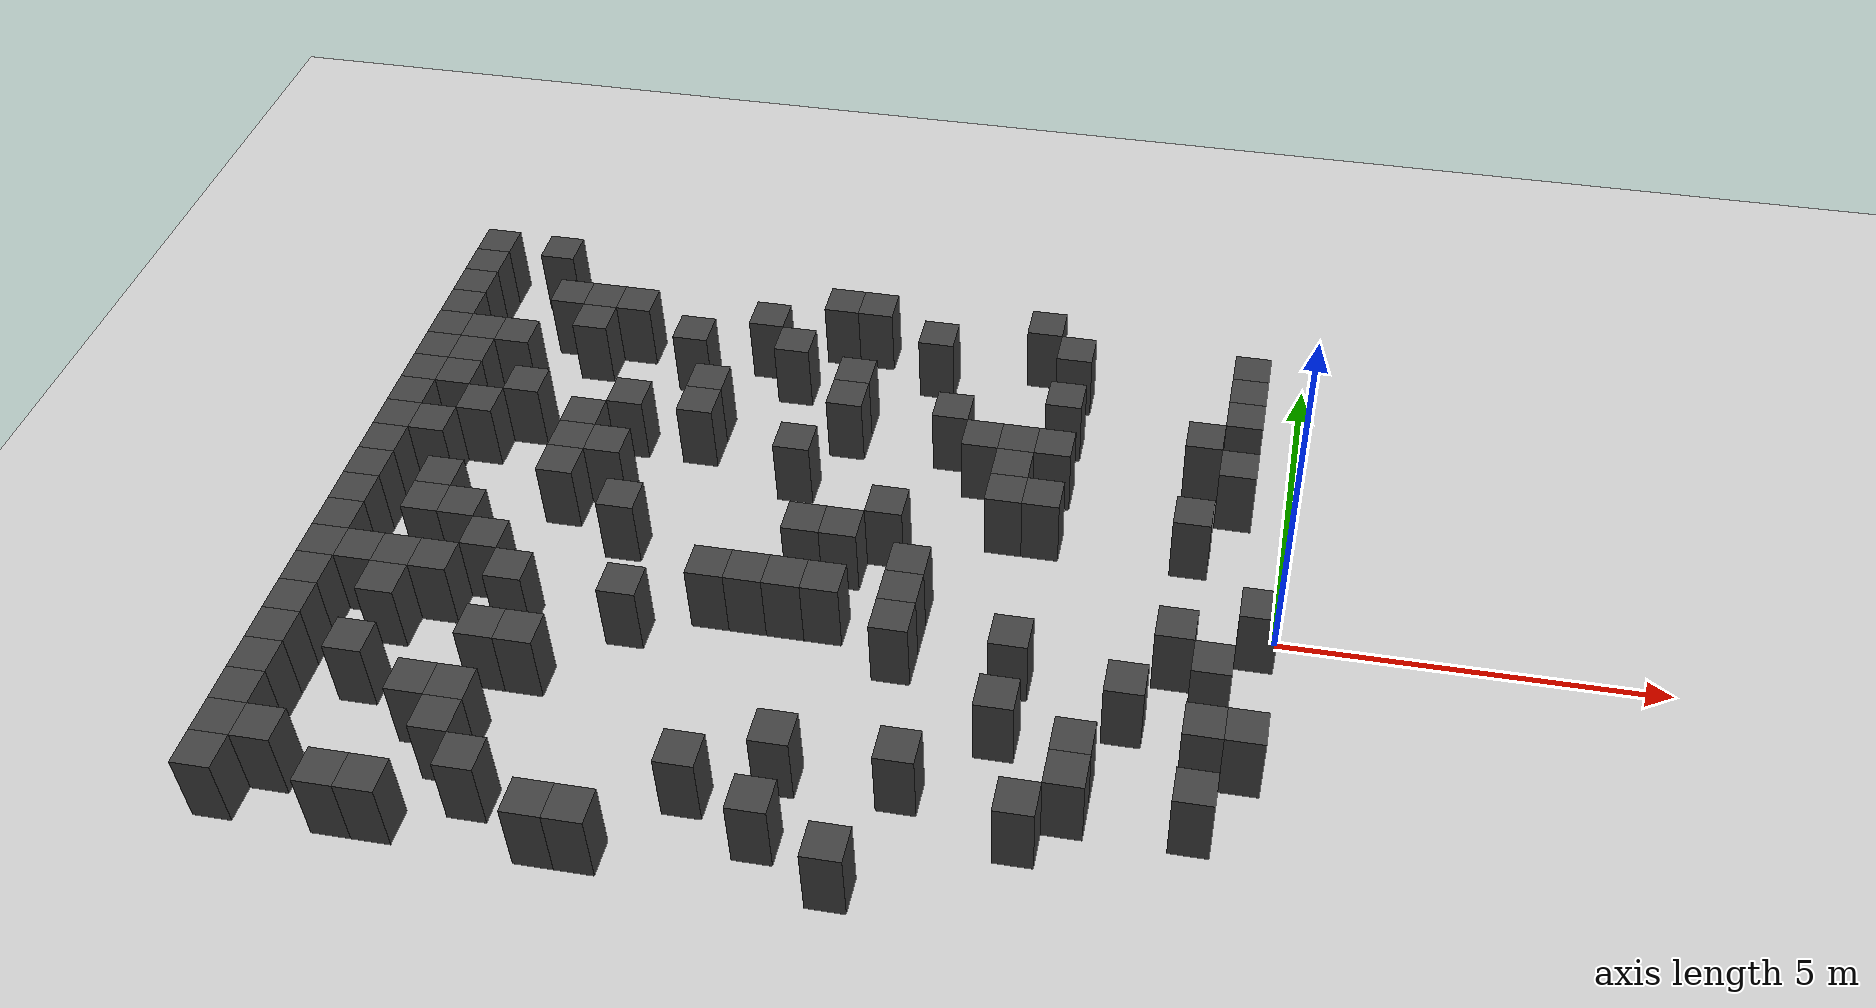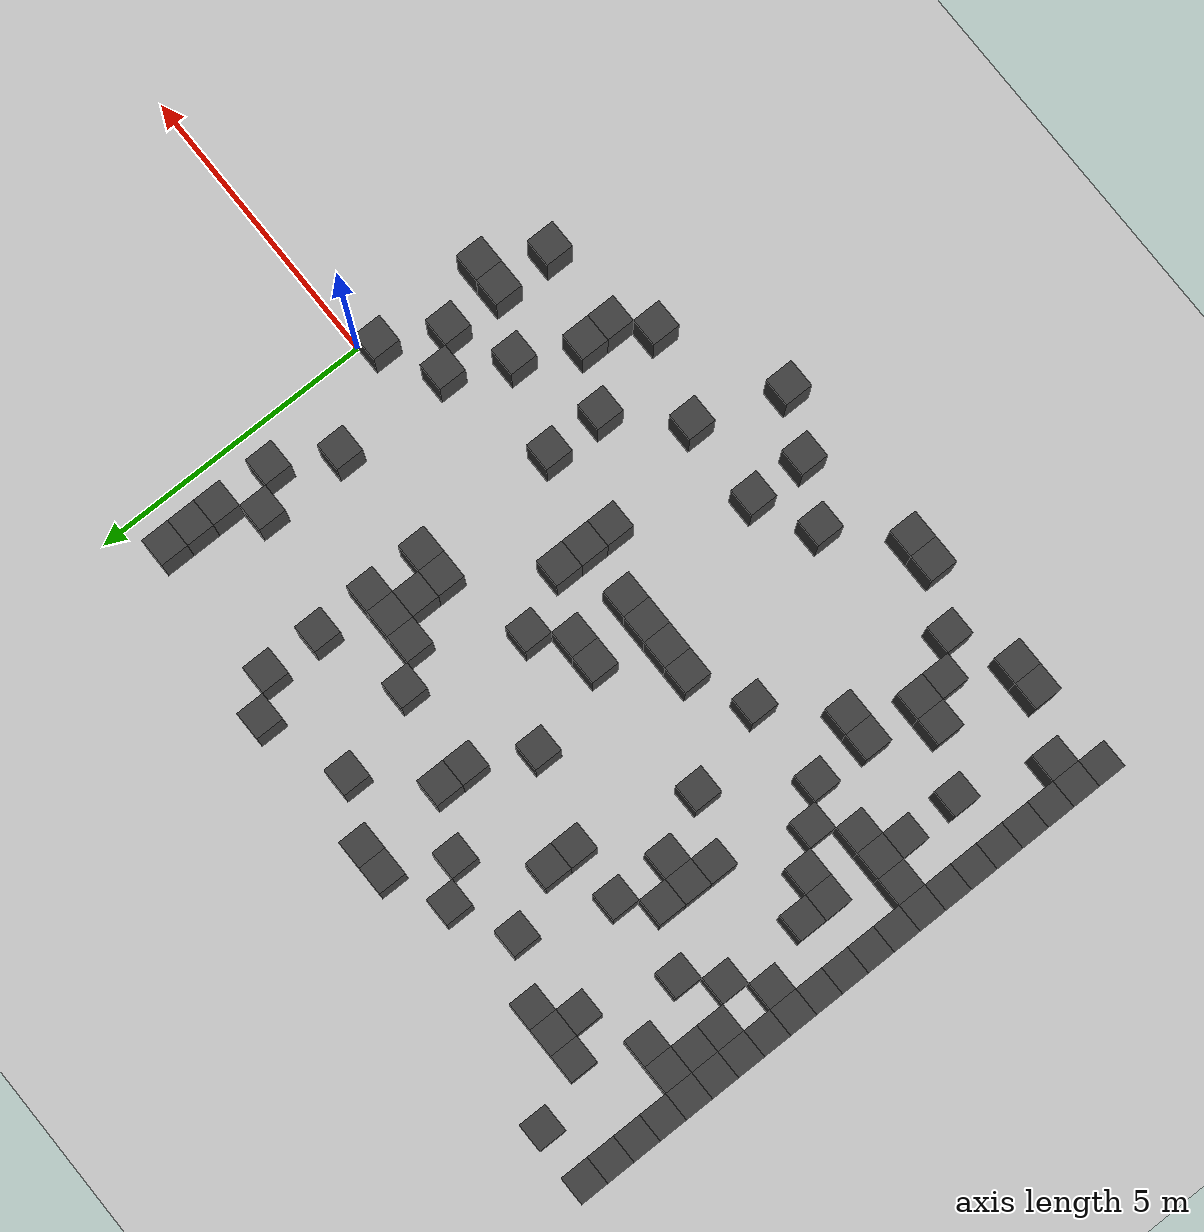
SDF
<sdf version="1.7">
 <world name="map_4492">
  <model name="ground_plane">
   <static>true</static>
   <link name="link">
    <collision name="collision">
     <geometry><plane><normal>0 0 1</normal><size>200 200</size></plane></geometry>
    </collision>
    <visual name="visual">
     <geometry><plane><normal>0 0 1</normal><size>200 200</size></plane></geometry>
     <material><ambient>0.8 0.8 0.8 1</ambient><diffuse>0.8 0.8 0.8 1</diffuse></material>
    </visual>
   </link>
  </model>
  <model name="maze_environment">
   <static>true</static>
   <link name="wall_214">
    <pose>-12.250 5.250 0.500 0 0 0</pose>
    <collision name="col"><geometry><box><size>0.5 0.5 1.0</size></box></geometry></collision>
    <visual name="vis">
     <geometry><box><size>0.5 0.5 1.0</size></box></geometry>
     <material><ambient>0.15 0.15 0.15 1</ambient><diffuse>0.25 0.25 0.25 1</diffuse></material>
    </visual>
   </link>
   <link name="wall_215">
    <pose>-11.250 5.250 0.500 0 0 0</pose>
    <collision name="col"><geometry><box><size>0.5 0.5 1.0</size></box></geometry></collision>
    <visual name="vis">
     <geometry><box><size>0.5 0.5 1.0</size></box></geometry>
     <material><ambient>0.15 0.15 0.15 1</ambient><diffuse>0.25 0.25 0.25 1</diffuse></material>
    </visual>
   </link>
   <link name="wall_226">
    <pose>-12.250 4.750 0.500 0 0 0</pose>
    <collision name="col"><geometry><box><size>0.5 0.5 1.0</size></box></geometry></collision>
    <visual name="vis">
     <geometry><box><size>0.5 0.5 1.0</size></box></geometry>
     <material><ambient>0.15 0.15 0.15 1</ambient><diffuse>0.25 0.25 0.25 1</diffuse></material>
    </visual>
   </link>
   <link name="wall_227">
    <pose>-6.750 4.750 0.500 0 0 0</pose>
    <collision name="col"><geometry><box><size>0.5 0.5 1.0</size></box></geometry></collision>
    <visual name="vis">
     <geometry><box><size>0.5 0.5 1.0</size></box></geometry>
     <material><ambient>0.15 0.15 0.15 1</ambient><diffuse>0.25 0.25 0.25 1</diffuse></material>
    </visual>
   </link>
   <link name="wall_228">
    <pose>-6.250 4.750 0.500 0 0 0</pose>
    <collision name="col"><geometry><box><size>0.5 0.5 1.0</size></box></geometry></collision>
    <visual name="vis">
     <geometry><box><size>0.5 0.5 1.0</size></box></geometry>
     <material><ambient>0.15 0.15 0.15 1</ambient><diffuse>0.25 0.25 0.25 1</diffuse></material>
    </visual>
   </link>
   <link name="wall_229">
    <pose>-3.750 4.750 0.500 0 0 0</pose>
    <collision name="col"><geometry><box><size>0.5 0.5 1.0</size></box></geometry></collision>
    <visual name="vis">
     <geometry><box><size>0.5 0.5 1.0</size></box></geometry>
     <material><ambient>0.15 0.15 0.15 1</ambient><diffuse>0.25 0.25 0.25 1</diffuse></material>
    </visual>
   </link>
   <link name="wall_235">
    <pose>-12.250 4.250 0.500 0 0 0</pose>
    <collision name="col"><geometry><box><size>0.5 0.5 1.0</size></box></geometry></collision>
    <visual name="vis">
     <geometry><box><size>0.5 0.5 1.0</size></box></geometry>
     <material><ambient>0.15 0.15 0.15 1</ambient><diffuse>0.25 0.25 0.25 1</diffuse></material>
    </visual>
   </link>
   <link name="wall_236">
    <pose>-10.750 4.250 0.500 0 0 0</pose>
    <collision name="col"><geometry><box><size>0.5 0.5 1.0</size></box></geometry></collision>
    <visual name="vis">
     <geometry><box><size>0.5 0.5 1.0</size></box></geometry>
     <material><ambient>0.15 0.15 0.15 1</ambient><diffuse>0.25 0.25 0.25 1</diffuse></material>
    </visual>
   </link>
   <link name="wall_237">
    <pose>-10.250 4.250 0.500 0 0 0</pose>
    <collision name="col"><geometry><box><size>0.5 0.5 1.0</size></box></geometry></collision>
    <visual name="vis">
     <geometry><box><size>0.5 0.5 1.0</size></box></geometry>
     <material><ambient>0.15 0.15 0.15 1</ambient><diffuse>0.25 0.25 0.25 1</diffuse></material>
    </visual>
   </link>
   <link name="wall_238">
    <pose>-9.750 4.250 0.500 0 0 0</pose>
    <collision name="col"><geometry><box><size>0.5 0.5 1.0</size></box></geometry></collision>
    <visual name="vis">
     <geometry><box><size>0.5 0.5 1.0</size></box></geometry>
     <material><ambient>0.15 0.15 0.15 1</ambient><diffuse>0.25 0.25 0.25 1</diffuse></material>
    </visual>
   </link>
   <link name="wall_239">
    <pose>-7.750 4.250 0.500 0 0 0</pose>
    <collision name="col"><geometry><box><size>0.5 0.5 1.0</size></box></geometry></collision>
    <visual name="vis">
     <geometry><box><size>0.5 0.5 1.0</size></box></geometry>
     <material><ambient>0.15 0.15 0.15 1</ambient><diffuse>0.25 0.25 0.25 1</diffuse></material>
    </visual>
   </link>
   <link name="wall_240">
    <pose>-5.250 4.250 0.500 0 0 0</pose>
    <collision name="col"><geometry><box><size>0.5 0.5 1.0</size></box></geometry></collision>
    <visual name="vis">
     <geometry><box><size>0.5 0.5 1.0</size></box></geometry>
     <material><ambient>0.15 0.15 0.15 1</ambient><diffuse>0.25 0.25 0.25 1</diffuse></material>
    </visual>
   </link>
   <link name="wall_241">
    <pose>-3.250 4.250 0.500 0 0 0</pose>
    <collision name="col"><geometry><box><size>0.5 0.5 1.0</size></box></geometry></collision>
    <visual name="vis">
     <geometry><box><size>0.5 0.5 1.0</size></box></geometry>
     <material><ambient>0.15 0.15 0.15 1</ambient><diffuse>0.25 0.25 0.25 1</diffuse></material>
    </visual>
   </link>
   <link name="wall_242">
    <pose>-0.750 4.250 0.500 0 0 0</pose>
    <collision name="col"><geometry><box><size>0.5 0.5 1.0</size></box></geometry></collision>
    <visual name="vis">
     <geometry><box><size>0.5 0.5 1.0</size></box></geometry>
     <material><ambient>0.15 0.15 0.15 1</ambient><diffuse>0.25 0.25 0.25 1</diffuse></material>
    </visual>
   </link>
   <link name="wall_249">
    <pose>-12.250 3.750 0.500 0 0 0</pose>
    <collision name="col"><geometry><box><size>0.5 0.5 1.0</size></box></geometry></collision>
    <visual name="vis">
     <geometry><box><size>0.5 0.5 1.0</size></box></geometry>
     <material><ambient>0.15 0.15 0.15 1</ambient><diffuse>0.25 0.25 0.25 1</diffuse></material>
    </visual>
   </link>
   <link name="wall_250">
    <pose>-10.250 3.750 0.500 0 0 0</pose>
    <collision name="col"><geometry><box><size>0.5 0.5 1.0</size></box></geometry></collision>
    <visual name="vis">
     <geometry><box><size>0.5 0.5 1.0</size></box></geometry>
     <material><ambient>0.15 0.15 0.15 1</ambient><diffuse>0.25 0.25 0.25 1</diffuse></material>
    </visual>
   </link>
   <link name="wall_251">
    <pose>-8.750 3.750 0.500 0 0 0</pose>
    <collision name="col"><geometry><box><size>0.5 0.5 1.0</size></box></geometry></collision>
    <visual name="vis">
     <geometry><box><size>0.5 0.5 1.0</size></box></geometry>
     <material><ambient>0.15 0.15 0.15 1</ambient><diffuse>0.25 0.25 0.25 1</diffuse></material>
    </visual>
   </link>
   <link name="wall_252">
    <pose>-7.250 3.750 0.500 0 0 0</pose>
    <collision name="col"><geometry><box><size>0.5 0.5 1.0</size></box></geometry></collision>
    <visual name="vis">
     <geometry><box><size>0.5 0.5 1.0</size></box></geometry>
     <material><ambient>0.15 0.15 0.15 1</ambient><diffuse>0.25 0.25 0.25 1</diffuse></material>
    </visual>
   </link>
   <link name="wall_253">
    <pose>-0.750 3.750 0.500 0 0 0</pose>
    <collision name="col"><geometry><box><size>0.5 0.5 1.0</size></box></geometry></collision>
    <visual name="vis">
     <geometry><box><size>0.5 0.5 1.0</size></box></geometry>
     <material><ambient>0.15 0.15 0.15 1</ambient><diffuse>0.25 0.25 0.25 1</diffuse></material>
    </visual>
   </link>
   <link name="wall_259">
    <pose>-12.250 3.250 0.500 0 0 0</pose>
    <collision name="col"><geometry><box><size>0.5 0.5 1.0</size></box></geometry></collision>
    <visual name="vis">
     <geometry><box><size>0.5 0.5 1.0</size></box></geometry>
     <material><ambient>0.15 0.15 0.15 1</ambient><diffuse>0.25 0.25 0.25 1</diffuse></material>
    </visual>
   </link>
   <link name="wall_260">
    <pose>-11.750 3.250 0.500 0 0 0</pose>
    <collision name="col"><geometry><box><size>0.5 0.5 1.0</size></box></geometry></collision>
    <visual name="vis">
     <geometry><box><size>0.5 0.5 1.0</size></box></geometry>
     <material><ambient>0.15 0.15 0.15 1</ambient><diffuse>0.25 0.25 0.25 1</diffuse></material>
    </visual>
   </link>
   <link name="wall_261">
    <pose>-11.250 3.250 0.500 0 0 0</pose>
    <collision name="col"><geometry><box><size>0.5 0.5 1.0</size></box></geometry></collision>
    <visual name="vis">
     <geometry><box><size>0.5 0.5 1.0</size></box></geometry>
     <material><ambient>0.15 0.15 0.15 1</ambient><diffuse>0.25 0.25 0.25 1</diffuse></material>
    </visual>
   </link>
   <link name="wall_262">
    <pose>-6.250 3.250 0.500 0 0 0</pose>
    <collision name="col"><geometry><box><size>0.5 0.5 1.0</size></box></geometry></collision>
    <visual name="vis">
     <geometry><box><size>0.5 0.5 1.0</size></box></geometry>
     <material><ambient>0.15 0.15 0.15 1</ambient><diffuse>0.25 0.25 0.25 1</diffuse></material>
    </visual>
   </link>
   <link name="wall_263">
    <pose>-3.250 3.250 0.500 0 0 0</pose>
    <collision name="col"><geometry><box><size>0.5 0.5 1.0</size></box></geometry></collision>
    <visual name="vis">
     <geometry><box><size>0.5 0.5 1.0</size></box></geometry>
     <material><ambient>0.15 0.15 0.15 1</ambient><diffuse>0.25 0.25 0.25 1</diffuse></material>
    </visual>
   </link>
   <link name="wall_264">
    <pose>-0.750 3.250 0.500 0 0 0</pose>
    <collision name="col"><geometry><box><size>0.5 0.5 1.0</size></box></geometry></collision>
    <visual name="vis">
     <geometry><box><size>0.5 0.5 1.0</size></box></geometry>
     <material><ambient>0.15 0.15 0.15 1</ambient><diffuse>0.25 0.25 0.25 1</diffuse></material>
    </visual>
   </link>
   <link name="wall_271">
    <pose>-12.250 2.750 0.500 0 0 0</pose>
    <collision name="col"><geometry><box><size>0.5 0.5 1.0</size></box></geometry></collision>
    <visual name="vis">
     <geometry><box><size>0.5 0.5 1.0</size></box></geometry>
     <material><ambient>0.15 0.15 0.15 1</ambient><diffuse>0.25 0.25 0.25 1</diffuse></material>
    </visual>
   </link>
   <link name="wall_272">
    <pose>-11.750 2.750 0.500 0 0 0</pose>
    <collision name="col"><geometry><box><size>0.5 0.5 1.0</size></box></geometry></collision>
    <visual name="vis">
     <geometry><box><size>0.5 0.5 1.0</size></box></geometry>
     <material><ambient>0.15 0.15 0.15 1</ambient><diffuse>0.25 0.25 0.25 1</diffuse></material>
    </visual>
   </link>
   <link name="wall_273">
    <pose>-8.250 2.750 0.500 0 0 0</pose>
    <collision name="col"><geometry><box><size>0.5 0.5 1.0</size></box></geometry></collision>
    <visual name="vis">
     <geometry><box><size>0.5 0.5 1.0</size></box></geometry>
     <material><ambient>0.15 0.15 0.15 1</ambient><diffuse>0.25 0.25 0.25 1</diffuse></material>
    </visual>
   </link>
   <link name="wall_274">
    <pose>-6.250 2.750 0.500 0 0 0</pose>
    <collision name="col"><geometry><box><size>0.5 0.5 1.0</size></box></geometry></collision>
    <visual name="vis">
     <geometry><box><size>0.5 0.5 1.0</size></box></geometry>
     <material><ambient>0.15 0.15 0.15 1</ambient><diffuse>0.25 0.25 0.25 1</diffuse></material>
    </visual>
   </link>
   <link name="wall_275">
    <pose>-4.750 2.750 0.500 0 0 0</pose>
    <collision name="col"><geometry><box><size>0.5 0.5 1.0</size></box></geometry></collision>
    <visual name="vis">
     <geometry><box><size>0.5 0.5 1.0</size></box></geometry>
     <material><ambient>0.15 0.15 0.15 1</ambient><diffuse>0.25 0.25 0.25 1</diffuse></material>
    </visual>
   </link>
   <link name="wall_276">
    <pose>-1.250 2.750 0.500 0 0 0</pose>
    <collision name="col"><geometry><box><size>0.5 0.5 1.0</size></box></geometry></collision>
    <visual name="vis">
     <geometry><box><size>0.5 0.5 1.0</size></box></geometry>
     <material><ambient>0.15 0.15 0.15 1</ambient><diffuse>0.25 0.25 0.25 1</diffuse></material>
    </visual>
   </link>
   <link name="wall_282">
    <pose>-12.250 2.250 0.500 0 0 0</pose>
    <collision name="col"><geometry><box><size>0.5 0.5 1.0</size></box></geometry></collision>
    <visual name="vis">
     <geometry><box><size>0.5 0.5 1.0</size></box></geometry>
     <material><ambient>0.15 0.15 0.15 1</ambient><diffuse>0.25 0.25 0.25 1</diffuse></material>
    </visual>
   </link>
   <link name="wall_283">
    <pose>-11.750 2.250 0.500 0 0 0</pose>
    <collision name="col"><geometry><box><size>0.5 0.5 1.0</size></box></geometry></collision>
    <visual name="vis">
     <geometry><box><size>0.5 0.5 1.0</size></box></geometry>
     <material><ambient>0.15 0.15 0.15 1</ambient><diffuse>0.25 0.25 0.25 1</diffuse></material>
    </visual>
   </link>
   <link name="wall_284">
    <pose>-10.750 2.250 0.500 0 0 0</pose>
    <collision name="col"><geometry><box><size>0.5 0.5 1.0</size></box></geometry></collision>
    <visual name="vis">
     <geometry><box><size>0.5 0.5 1.0</size></box></geometry>
     <material><ambient>0.15 0.15 0.15 1</ambient><diffuse>0.25 0.25 0.25 1</diffuse></material>
    </visual>
   </link>
   <link name="wall_285">
    <pose>-9.250 2.250 0.500 0 0 0</pose>
    <collision name="col"><geometry><box><size>0.5 0.5 1.0</size></box></geometry></collision>
    <visual name="vis">
     <geometry><box><size>0.5 0.5 1.0</size></box></geometry>
     <material><ambient>0.15 0.15 0.15 1</ambient><diffuse>0.25 0.25 0.25 1</diffuse></material>
    </visual>
   </link>
   <link name="wall_286">
    <pose>-8.250 2.250 0.500 0 0 0</pose>
    <collision name="col"><geometry><box><size>0.5 0.5 1.0</size></box></geometry></collision>
    <visual name="vis">
     <geometry><box><size>0.5 0.5 1.0</size></box></geometry>
     <material><ambient>0.15 0.15 0.15 1</ambient><diffuse>0.25 0.25 0.25 1</diffuse></material>
    </visual>
   </link>
   <link name="wall_287">
    <pose>-4.250 2.250 0.500 0 0 0</pose>
    <collision name="col"><geometry><box><size>0.5 0.5 1.0</size></box></geometry></collision>
    <visual name="vis">
     <geometry><box><size>0.5 0.5 1.0</size></box></geometry>
     <material><ambient>0.15 0.15 0.15 1</ambient><diffuse>0.25 0.25 0.25 1</diffuse></material>
    </visual>
   </link>
   <link name="wall_288">
    <pose>-3.750 2.250 0.500 0 0 0</pose>
    <collision name="col"><geometry><box><size>0.5 0.5 1.0</size></box></geometry></collision>
    <visual name="vis">
     <geometry><box><size>0.5 0.5 1.0</size></box></geometry>
     <material><ambient>0.15 0.15 0.15 1</ambient><diffuse>0.25 0.25 0.25 1</diffuse></material>
    </visual>
   </link>
   <link name="wall_289">
    <pose>-3.250 2.250 0.500 0 0 0</pose>
    <collision name="col"><geometry><box><size>0.5 0.5 1.0</size></box></geometry></collision>
    <visual name="vis">
     <geometry><box><size>0.5 0.5 1.0</size></box></geometry>
     <material><ambient>0.15 0.15 0.15 1</ambient><diffuse>0.25 0.25 0.25 1</diffuse></material>
    </visual>
   </link>
   <link name="wall_290">
    <pose>-0.750 2.250 0.500 0 0 0</pose>
    <collision name="col"><geometry><box><size>0.5 0.5 1.0</size></box></geometry></collision>
    <visual name="vis">
     <geometry><box><size>0.5 0.5 1.0</size></box></geometry>
     <material><ambient>0.15 0.15 0.15 1</ambient><diffuse>0.25 0.25 0.25 1</diffuse></material>
    </visual>
   </link>
   <link name="wall_297">
    <pose>-12.250 1.750 0.500 0 0 0</pose>
    <collision name="col"><geometry><box><size>0.5 0.5 1.0</size></box></geometry></collision>
    <visual name="vis">
     <geometry><box><size>0.5 0.5 1.0</size></box></geometry>
     <material><ambient>0.15 0.15 0.15 1</ambient><diffuse>0.25 0.25 0.25 1</diffuse></material>
    </visual>
   </link>
   <link name="wall_298">
    <pose>-11.250 1.750 0.500 0 0 0</pose>
    <collision name="col"><geometry><box><size>0.5 0.5 1.0</size></box></geometry></collision>
    <visual name="vis">
     <geometry><box><size>0.5 0.5 1.0</size></box></geometry>
     <material><ambient>0.15 0.15 0.15 1</ambient><diffuse>0.25 0.25 0.25 1</diffuse></material>
    </visual>
   </link>
   <link name="wall_299">
    <pose>-9.750 1.750 0.500 0 0 0</pose>
    <collision name="col"><geometry><box><size>0.5 0.5 1.0</size></box></geometry></collision>
    <visual name="vis">
     <geometry><box><size>0.5 0.5 1.0</size></box></geometry>
     <material><ambient>0.15 0.15 0.15 1</ambient><diffuse>0.25 0.25 0.25 1</diffuse></material>
    </visual>
   </link>
   <link name="wall_300">
    <pose>-6.750 1.750 0.500 0 0 0</pose>
    <collision name="col"><geometry><box><size>0.5 0.5 1.0</size></box></geometry></collision>
    <visual name="vis">
     <geometry><box><size>0.5 0.5 1.0</size></box></geometry>
     <material><ambient>0.15 0.15 0.15 1</ambient><diffuse>0.25 0.25 0.25 1</diffuse></material>
    </visual>
   </link>
   <link name="wall_301">
    <pose>-3.750 1.750 0.500 0 0 0</pose>
    <collision name="col"><geometry><box><size>0.5 0.5 1.0</size></box></geometry></collision>
    <visual name="vis">
     <geometry><box><size>0.5 0.5 1.0</size></box></geometry>
     <material><ambient>0.15 0.15 0.15 1</ambient><diffuse>0.25 0.25 0.25 1</diffuse></material>
    </visual>
   </link>
   <link name="wall_307">
    <pose>-12.250 1.250 0.500 0 0 0</pose>
    <collision name="col"><geometry><box><size>0.5 0.5 1.0</size></box></geometry></collision>
    <visual name="vis">
     <geometry><box><size>0.5 0.5 1.0</size></box></geometry>
     <material><ambient>0.15 0.15 0.15 1</ambient><diffuse>0.25 0.25 0.25 1</diffuse></material>
    </visual>
   </link>
   <link name="wall_308">
    <pose>-11.750 1.250 0.500 0 0 0</pose>
    <collision name="col"><geometry><box><size>0.5 0.5 1.0</size></box></geometry></collision>
    <visual name="vis">
     <geometry><box><size>0.5 0.5 1.0</size></box></geometry>
     <material><ambient>0.15 0.15 0.15 1</ambient><diffuse>0.25 0.25 0.25 1</diffuse></material>
    </visual>
   </link>
   <link name="wall_309">
    <pose>-9.750 1.250 0.500 0 0 0</pose>
    <collision name="col"><geometry><box><size>0.5 0.5 1.0</size></box></geometry></collision>
    <visual name="vis">
     <geometry><box><size>0.5 0.5 1.0</size></box></geometry>
     <material><ambient>0.15 0.15 0.15 1</ambient><diffuse>0.25 0.25 0.25 1</diffuse></material>
    </visual>
   </link>
   <link name="wall_310">
    <pose>-9.250 1.250 0.500 0 0 0</pose>
    <collision name="col"><geometry><box><size>0.5 0.5 1.0</size></box></geometry></collision>
    <visual name="vis">
     <geometry><box><size>0.5 0.5 1.0</size></box></geometry>
     <material><ambient>0.15 0.15 0.15 1</ambient><diffuse>0.25 0.25 0.25 1</diffuse></material>
    </visual>
   </link>
   <link name="wall_311">
    <pose>-3.750 1.250 0.500 0 0 0</pose>
    <collision name="col"><geometry><box><size>0.5 0.5 1.0</size></box></geometry></collision>
    <visual name="vis">
     <geometry><box><size>0.5 0.5 1.0</size></box></geometry>
     <material><ambient>0.15 0.15 0.15 1</ambient><diffuse>0.25 0.25 0.25 1</diffuse></material>
    </visual>
   </link>
   <link name="wall_312">
    <pose>-3.250 1.250 0.500 0 0 0</pose>
    <collision name="col"><geometry><box><size>0.5 0.5 1.0</size></box></geometry></collision>
    <visual name="vis">
     <geometry><box><size>0.5 0.5 1.0</size></box></geometry>
     <material><ambient>0.15 0.15 0.15 1</ambient><diffuse>0.25 0.25 0.25 1</diffuse></material>
    </visual>
   </link>
   <link name="wall_313">
    <pose>-1.250 1.250 0.500 0 0 0</pose>
    <collision name="col"><geometry><box><size>0.5 0.5 1.0</size></box></geometry></collision>
    <visual name="vis">
     <geometry><box><size>0.5 0.5 1.0</size></box></geometry>
     <material><ambient>0.15 0.15 0.15 1</ambient><diffuse>0.25 0.25 0.25 1</diffuse></material>
    </visual>
   </link>
   <link name="wall_322">
    <pose>-12.250 0.750 0.500 0 0 0</pose>
    <collision name="col"><geometry><box><size>0.5 0.5 1.0</size></box></geometry></collision>
    <visual name="vis">
     <geometry><box><size>0.5 0.5 1.0</size></box></geometry>
     <material><ambient>0.15 0.15 0.15 1</ambient><diffuse>0.25 0.25 0.25 1</diffuse></material>
    </visual>
   </link>
   <link name="wall_323">
    <pose>-9.750 0.750 0.500 0 0 0</pose>
    <collision name="col"><geometry><box><size>0.5 0.5 1.0</size></box></geometry></collision>
    <visual name="vis">
     <geometry><box><size>0.5 0.5 1.0</size></box></geometry>
     <material><ambient>0.15 0.15 0.15 1</ambient><diffuse>0.25 0.25 0.25 1</diffuse></material>
    </visual>
   </link>
   <link name="wall_324">
    <pose>-5.250 0.750 0.500 0 0 0</pose>
    <collision name="col"><geometry><box><size>0.5 0.5 1.0</size></box></geometry></collision>
    <visual name="vis">
     <geometry><box><size>0.5 0.5 1.0</size></box></geometry>
     <material><ambient>0.15 0.15 0.15 1</ambient><diffuse>0.25 0.25 0.25 1</diffuse></material>
    </visual>
   </link>
   <link name="wall_329">
    <pose>-12.250 0.250 0.500 0 0 0</pose>
    <collision name="col"><geometry><box><size>0.5 0.5 1.0</size></box></geometry></collision>
    <visual name="vis">
     <geometry><box><size>0.5 0.5 1.0</size></box></geometry>
     <material><ambient>0.15 0.15 0.15 1</ambient><diffuse>0.25 0.25 0.25 1</diffuse></material>
    </visual>
   </link>
   <link name="wall_330">
    <pose>-11.250 0.250 0.500 0 0 0</pose>
    <collision name="col"><geometry><box><size>0.5 0.5 1.0</size></box></geometry></collision>
    <visual name="vis">
     <geometry><box><size>0.5 0.5 1.0</size></box></geometry>
     <material><ambient>0.15 0.15 0.15 1</ambient><diffuse>0.25 0.25 0.25 1</diffuse></material>
    </visual>
   </link>
   <link name="wall_331">
    <pose>-8.750 0.250 0.500 0 0 0</pose>
    <collision name="col"><geometry><box><size>0.5 0.5 1.0</size></box></geometry></collision>
    <visual name="vis">
     <geometry><box><size>0.5 0.5 1.0</size></box></geometry>
     <material><ambient>0.15 0.15 0.15 1</ambient><diffuse>0.25 0.25 0.25 1</diffuse></material>
    </visual>
   </link>
   <link name="wall_332">
    <pose>-6.250 0.250 0.500 0 0 0</pose>
    <collision name="col"><geometry><box><size>0.5 0.5 1.0</size></box></geometry></collision>
    <visual name="vis">
     <geometry><box><size>0.5 0.5 1.0</size></box></geometry>
     <material><ambient>0.15 0.15 0.15 1</ambient><diffuse>0.25 0.25 0.25 1</diffuse></material>
    </visual>
   </link>
   <link name="wall_333">
    <pose>-5.750 0.250 0.500 0 0 0</pose>
    <collision name="col"><geometry><box><size>0.5 0.5 1.0</size></box></geometry></collision>
    <visual name="vis">
     <geometry><box><size>0.5 0.5 1.0</size></box></geometry>
     <material><ambient>0.15 0.15 0.15 1</ambient><diffuse>0.25 0.25 0.25 1</diffuse></material>
    </visual>
   </link>
   <link name="wall_339">
    <pose>-12.250 -0.250 0.500 0 0 0</pose>
    <collision name="col"><geometry><box><size>0.5 0.5 1.0</size></box></geometry></collision>
    <visual name="vis">
     <geometry><box><size>0.5 0.5 1.0</size></box></geometry>
     <material><ambient>0.15 0.15 0.15 1</ambient><diffuse>0.25 0.25 0.25 1</diffuse></material>
    </visual>
   </link>
   <link name="wall_340">
    <pose>-11.250 -0.250 0.500 0 0 0</pose>
    <collision name="col"><geometry><box><size>0.5 0.5 1.0</size></box></geometry></collision>
    <visual name="vis">
     <geometry><box><size>0.5 0.5 1.0</size></box></geometry>
     <material><ambient>0.15 0.15 0.15 1</ambient><diffuse>0.25 0.25 0.25 1</diffuse></material>
    </visual>
   </link>
   <link name="wall_341">
    <pose>-10.750 -0.250 0.500 0 0 0</pose>
    <collision name="col"><geometry><box><size>0.5 0.5 1.0</size></box></geometry></collision>
    <visual name="vis">
     <geometry><box><size>0.5 0.5 1.0</size></box></geometry>
     <material><ambient>0.15 0.15 0.15 1</ambient><diffuse>0.25 0.25 0.25 1</diffuse></material>
    </visual>
   </link>
   <link name="wall_342">
    <pose>-4.750 -0.250 0.500 0 0 0</pose>
    <collision name="col"><geometry><box><size>0.5 0.5 1.0</size></box></geometry></collision>
    <visual name="vis">
     <geometry><box><size>0.5 0.5 1.0</size></box></geometry>
     <material><ambient>0.15 0.15 0.15 1</ambient><diffuse>0.25 0.25 0.25 1</diffuse></material>
    </visual>
   </link>
   <link name="wall_343">
    <pose>-0.250 -0.250 0.500 0 0 0</pose>
    <collision name="col"><geometry><box><size>0.5 0.5 1.0</size></box></geometry></collision>
    <visual name="vis">
     <geometry><box><size>0.5 0.5 1.0</size></box></geometry>
     <material><ambient>0.15 0.15 0.15 1</ambient><diffuse>0.25 0.25 0.25 1</diffuse></material>
    </visual>
   </link>
   <link name="wall_352">
    <pose>-12.250 -0.750 0.500 0 0 0</pose>
    <collision name="col"><geometry><box><size>0.5 0.5 1.0</size></box></geometry></collision>
    <visual name="vis">
     <geometry><box><size>0.5 0.5 1.0</size></box></geometry>
     <material><ambient>0.15 0.15 0.15 1</ambient><diffuse>0.25 0.25 0.25 1</diffuse></material>
    </visual>
   </link>
   <link name="wall_353">
    <pose>-10.250 -0.750 0.500 0 0 0</pose>
    <collision name="col"><geometry><box><size>0.5 0.5 1.0</size></box></geometry></collision>
    <visual name="vis">
     <geometry><box><size>0.5 0.5 1.0</size></box></geometry>
     <material><ambient>0.15 0.15 0.15 1</ambient><diffuse>0.25 0.25 0.25 1</diffuse></material>
    </visual>
   </link>
   <link name="wall_354">
    <pose>-7.250 -0.750 0.500 0 0 0</pose>
    <collision name="col"><geometry><box><size>0.5 0.5 1.0</size></box></geometry></collision>
    <visual name="vis">
     <geometry><box><size>0.5 0.5 1.0</size></box></geometry>
     <material><ambient>0.15 0.15 0.15 1</ambient><diffuse>0.25 0.25 0.25 1</diffuse></material>
    </visual>
   </link>
   <link name="wall_355">
    <pose>-6.750 -0.750 0.500 0 0 0</pose>
    <collision name="col"><geometry><box><size>0.5 0.5 1.0</size></box></geometry></collision>
    <visual name="vis">
     <geometry><box><size>0.5 0.5 1.0</size></box></geometry>
     <material><ambient>0.15 0.15 0.15 1</ambient><diffuse>0.25 0.25 0.25 1</diffuse></material>
    </visual>
   </link>
   <link name="wall_356">
    <pose>-6.250 -0.750 0.500 0 0 0</pose>
    <collision name="col"><geometry><box><size>0.5 0.5 1.0</size></box></geometry></collision>
    <visual name="vis">
     <geometry><box><size>0.5 0.5 1.0</size></box></geometry>
     <material><ambient>0.15 0.15 0.15 1</ambient><diffuse>0.25 0.25 0.25 1</diffuse></material>
    </visual>
   </link>
   <link name="wall_357">
    <pose>-5.750 -0.750 0.500 0 0 0</pose>
    <collision name="col"><geometry><box><size>0.5 0.5 1.0</size></box></geometry></collision>
    <visual name="vis">
     <geometry><box><size>0.5 0.5 1.0</size></box></geometry>
     <material><ambient>0.15 0.15 0.15 1</ambient><diffuse>0.25 0.25 0.25 1</diffuse></material>
    </visual>
   </link>
   <link name="wall_358">
    <pose>-4.750 -0.750 0.500 0 0 0</pose>
    <collision name="col"><geometry><box><size>0.5 0.5 1.0</size></box></geometry></collision>
    <visual name="vis">
     <geometry><box><size>0.5 0.5 1.0</size></box></geometry>
     <material><ambient>0.15 0.15 0.15 1</ambient><diffuse>0.25 0.25 0.25 1</diffuse></material>
    </visual>
   </link>
   <link name="wall_359">
    <pose>-1.250 -0.750 0.500 0 0 0</pose>
    <collision name="col"><geometry><box><size>0.5 0.5 1.0</size></box></geometry></collision>
    <visual name="vis">
     <geometry><box><size>0.5 0.5 1.0</size></box></geometry>
     <material><ambient>0.15 0.15 0.15 1</ambient><diffuse>0.25 0.25 0.25 1</diffuse></material>
    </visual>
   </link>
   <link name="wall_366">
    <pose>-12.250 -1.250 0.500 0 0 0</pose>
    <collision name="col"><geometry><box><size>0.5 0.5 1.0</size></box></geometry></collision>
    <visual name="vis">
     <geometry><box><size>0.5 0.5 1.0</size></box></geometry>
     <material><ambient>0.15 0.15 0.15 1</ambient><diffuse>0.25 0.25 0.25 1</diffuse></material>
    </visual>
   </link>
   <link name="wall_367">
    <pose>-11.750 -1.250 0.500 0 0 0</pose>
    <collision name="col"><geometry><box><size>0.5 0.5 1.0</size></box></geometry></collision>
    <visual name="vis">
     <geometry><box><size>0.5 0.5 1.0</size></box></geometry>
     <material><ambient>0.15 0.15 0.15 1</ambient><diffuse>0.25 0.25 0.25 1</diffuse></material>
    </visual>
   </link>
   <link name="wall_368">
    <pose>-11.250 -1.250 0.500 0 0 0</pose>
    <collision name="col"><geometry><box><size>0.5 0.5 1.0</size></box></geometry></collision>
    <visual name="vis">
     <geometry><box><size>0.5 0.5 1.0</size></box></geometry>
     <material><ambient>0.15 0.15 0.15 1</ambient><diffuse>0.25 0.25 0.25 1</diffuse></material>
    </visual>
   </link>
   <link name="wall_369">
    <pose>-10.750 -1.250 0.500 0 0 0</pose>
    <collision name="col"><geometry><box><size>0.5 0.5 1.0</size></box></geometry></collision>
    <visual name="vis">
     <geometry><box><size>0.5 0.5 1.0</size></box></geometry>
     <material><ambient>0.15 0.15 0.15 1</ambient><diffuse>0.25 0.25 0.25 1</diffuse></material>
    </visual>
   </link>
   <link name="wall_370">
    <pose>-9.750 -1.250 0.500 0 0 0</pose>
    <collision name="col"><geometry><box><size>0.5 0.5 1.0</size></box></geometry></collision>
    <visual name="vis">
     <geometry><box><size>0.5 0.5 1.0</size></box></geometry>
     <material><ambient>0.15 0.15 0.15 1</ambient><diffuse>0.25 0.25 0.25 1</diffuse></material>
    </visual>
   </link>
   <link name="wall_371">
    <pose>-8.250 -1.250 0.500 0 0 0</pose>
    <collision name="col"><geometry><box><size>0.5 0.5 1.0</size></box></geometry></collision>
    <visual name="vis">
     <geometry><box><size>0.5 0.5 1.0</size></box></geometry>
     <material><ambient>0.15 0.15 0.15 1</ambient><diffuse>0.25 0.25 0.25 1</diffuse></material>
    </visual>
   </link>
   <link name="wall_372">
    <pose>-4.750 -1.250 0.500 0 0 0</pose>
    <collision name="col"><geometry><box><size>0.5 0.5 1.0</size></box></geometry></collision>
    <visual name="vis">
     <geometry><box><size>0.5 0.5 1.0</size></box></geometry>
     <material><ambient>0.15 0.15 0.15 1</ambient><diffuse>0.25 0.25 0.25 1</diffuse></material>
    </visual>
   </link>
   <link name="wall_373">
    <pose>-3.250 -1.250 0.500 0 0 0</pose>
    <collision name="col"><geometry><box><size>0.5 0.5 1.0</size></box></geometry></collision>
    <visual name="vis">
     <geometry><box><size>0.5 0.5 1.0</size></box></geometry>
     <material><ambient>0.15 0.15 0.15 1</ambient><diffuse>0.25 0.25 0.25 1</diffuse></material>
    </visual>
   </link>
   <link name="wall_374">
    <pose>-0.750 -1.250 0.500 0 0 0</pose>
    <collision name="col"><geometry><box><size>0.5 0.5 1.0</size></box></geometry></collision>
    <visual name="vis">
     <geometry><box><size>0.5 0.5 1.0</size></box></geometry>
     <material><ambient>0.15 0.15 0.15 1</ambient><diffuse>0.25 0.25 0.25 1</diffuse></material>
    </visual>
   </link>
   <link name="wall_380">
    <pose>-12.250 -1.750 0.500 0 0 0</pose>
    <collision name="col"><geometry><box><size>0.5 0.5 1.0</size></box></geometry></collision>
    <visual name="vis">
     <geometry><box><size>0.5 0.5 1.0</size></box></geometry>
     <material><ambient>0.15 0.15 0.15 1</ambient><diffuse>0.25 0.25 0.25 1</diffuse></material>
    </visual>
   </link>
   <link name="wall_381">
    <pose>-11.250 -1.750 0.500 0 0 0</pose>
    <collision name="col"><geometry><box><size>0.5 0.5 1.0</size></box></geometry></collision>
    <visual name="vis">
     <geometry><box><size>0.5 0.5 1.0</size></box></geometry>
     <material><ambient>0.15 0.15 0.15 1</ambient><diffuse>0.25 0.25 0.25 1</diffuse></material>
    </visual>
   </link>
   <link name="wall_382">
    <pose>-1.750 -1.750 0.500 0 0 0</pose>
    <collision name="col"><geometry><box><size>0.5 0.5 1.0</size></box></geometry></collision>
    <visual name="vis">
     <geometry><box><size>0.5 0.5 1.0</size></box></geometry>
     <material><ambient>0.15 0.15 0.15 1</ambient><diffuse>0.25 0.25 0.25 1</diffuse></material>
    </visual>
   </link>
   <link name="wall_387">
    <pose>-12.250 -2.250 0.500 0 0 0</pose>
    <collision name="col"><geometry><box><size>0.5 0.5 1.0</size></box></geometry></collision>
    <visual name="vis">
     <geometry><box><size>0.5 0.5 1.0</size></box></geometry>
     <material><ambient>0.15 0.15 0.15 1</ambient><diffuse>0.25 0.25 0.25 1</diffuse></material>
    </visual>
   </link>
   <link name="wall_388">
    <pose>-9.750 -2.250 0.500 0 0 0</pose>
    <collision name="col"><geometry><box><size>0.5 0.5 1.0</size></box></geometry></collision>
    <visual name="vis">
     <geometry><box><size>0.5 0.5 1.0</size></box></geometry>
     <material><ambient>0.15 0.15 0.15 1</ambient><diffuse>0.25 0.25 0.25 1</diffuse></material>
    </visual>
   </link>
   <link name="wall_389">
    <pose>-9.250 -2.250 0.500 0 0 0</pose>
    <collision name="col"><geometry><box><size>0.5 0.5 1.0</size></box></geometry></collision>
    <visual name="vis">
     <geometry><box><size>0.5 0.5 1.0</size></box></geometry>
     <material><ambient>0.15 0.15 0.15 1</ambient><diffuse>0.25 0.25 0.25 1</diffuse></material>
    </visual>
   </link>
   <link name="wall_390">
    <pose>-3.250 -2.250 0.500 0 0 0</pose>
    <collision name="col"><geometry><box><size>0.5 0.5 1.0</size></box></geometry></collision>
    <visual name="vis">
     <geometry><box><size>0.5 0.5 1.0</size></box></geometry>
     <material><ambient>0.15 0.15 0.15 1</ambient><diffuse>0.25 0.25 0.25 1</diffuse></material>
    </visual>
   </link>
   <link name="wall_391">
    <pose>-0.750 -2.250 0.500 0 0 0</pose>
    <collision name="col"><geometry><box><size>0.5 0.5 1.0</size></box></geometry></collision>
    <visual name="vis">
     <geometry><box><size>0.5 0.5 1.0</size></box></geometry>
     <material><ambient>0.15 0.15 0.15 1</ambient><diffuse>0.25 0.25 0.25 1</diffuse></material>
    </visual>
   </link>
   <link name="wall_392">
    <pose>-0.250 -2.250 0.500 0 0 0</pose>
    <collision name="col"><geometry><box><size>0.5 0.5 1.0</size></box></geometry></collision>
    <visual name="vis">
     <geometry><box><size>0.5 0.5 1.0</size></box></geometry>
     <material><ambient>0.15 0.15 0.15 1</ambient><diffuse>0.25 0.25 0.25 1</diffuse></material>
    </visual>
   </link>
   <link name="wall_397">
    <pose>-12.250 -2.750 0.500 0 0 0</pose>
    <collision name="col"><geometry><box><size>0.5 0.5 1.0</size></box></geometry></collision>
    <visual name="vis">
     <geometry><box><size>0.5 0.5 1.0</size></box></geometry>
     <material><ambient>0.15 0.15 0.15 1</ambient><diffuse>0.25 0.25 0.25 1</diffuse></material>
    </visual>
   </link>
   <link name="wall_398">
    <pose>-11.250 -2.750 0.500 0 0 0</pose>
    <collision name="col"><geometry><box><size>0.5 0.5 1.0</size></box></geometry></collision>
    <visual name="vis">
     <geometry><box><size>0.5 0.5 1.0</size></box></geometry>
     <material><ambient>0.15 0.15 0.15 1</ambient><diffuse>0.25 0.25 0.25 1</diffuse></material>
    </visual>
   </link>
   <link name="wall_399">
    <pose>-2.250 -2.750 0.500 0 0 0</pose>
    <collision name="col"><geometry><box><size>0.5 0.5 1.0</size></box></geometry></collision>
    <visual name="vis">
     <geometry><box><size>0.5 0.5 1.0</size></box></geometry>
     <material><ambient>0.15 0.15 0.15 1</ambient><diffuse>0.25 0.25 0.25 1</diffuse></material>
    </visual>
   </link>
   <link name="wall_406">
    <pose>-12.250 -3.250 0.500 0 0 0</pose>
    <collision name="col"><geometry><box><size>0.5 0.5 1.0</size></box></geometry></collision>
    <visual name="vis">
     <geometry><box><size>0.5 0.5 1.0</size></box></geometry>
     <material><ambient>0.15 0.15 0.15 1</ambient><diffuse>0.25 0.25 0.25 1</diffuse></material>
    </visual>
   </link>
   <link name="wall_407">
    <pose>-10.250 -3.250 0.500 0 0 0</pose>
    <collision name="col"><geometry><box><size>0.5 0.5 1.0</size></box></geometry></collision>
    <visual name="vis">
     <geometry><box><size>0.5 0.5 1.0</size></box></geometry>
     <material><ambient>0.15 0.15 0.15 1</ambient><diffuse>0.25 0.25 0.25 1</diffuse></material>
    </visual>
   </link>
   <link name="wall_408">
    <pose>-9.750 -3.250 0.500 0 0 0</pose>
    <collision name="col"><geometry><box><size>0.5 0.5 1.0</size></box></geometry></collision>
    <visual name="vis">
     <geometry><box><size>0.5 0.5 1.0</size></box></geometry>
     <material><ambient>0.15 0.15 0.15 1</ambient><diffuse>0.25 0.25 0.25 1</diffuse></material>
    </visual>
   </link>
   <link name="wall_409">
    <pose>-5.750 -3.250 0.500 0 0 0</pose>
    <collision name="col"><geometry><box><size>0.5 0.5 1.0</size></box></geometry></collision>
    <visual name="vis">
     <geometry><box><size>0.5 0.5 1.0</size></box></geometry>
     <material><ambient>0.15 0.15 0.15 1</ambient><diffuse>0.25 0.25 0.25 1</diffuse></material>
    </visual>
   </link>
   <link name="wall_410">
    <pose>-4.250 -3.250 0.500 0 0 0</pose>
    <collision name="col"><geometry><box><size>0.5 0.5 1.0</size></box></geometry></collision>
    <visual name="vis">
     <geometry><box><size>0.5 0.5 1.0</size></box></geometry>
     <material><ambient>0.15 0.15 0.15 1</ambient><diffuse>0.25 0.25 0.25 1</diffuse></material>
    </visual>
   </link>
   <link name="wall_411">
    <pose>-2.250 -3.250 0.500 0 0 0</pose>
    <collision name="col"><geometry><box><size>0.5 0.5 1.0</size></box></geometry></collision>
    <visual name="vis">
     <geometry><box><size>0.5 0.5 1.0</size></box></geometry>
     <material><ambient>0.15 0.15 0.15 1</ambient><diffuse>0.25 0.25 0.25 1</diffuse></material>
    </visual>
   </link>
   <link name="wall_412">
    <pose>-0.750 -3.250 0.500 0 0 0</pose>
    <collision name="col"><geometry><box><size>0.5 0.5 1.0</size></box></geometry></collision>
    <visual name="vis">
     <geometry><box><size>0.5 0.5 1.0</size></box></geometry>
     <material><ambient>0.15 0.15 0.15 1</ambient><diffuse>0.25 0.25 0.25 1</diffuse></material>
    </visual>
   </link>
   <link name="wall_417">
    <pose>-12.250 -3.750 0.500 0 0 0</pose>
    <collision name="col"><geometry><box><size>0.5 0.5 1.0</size></box></geometry></collision>
    <visual name="vis">
     <geometry><box><size>0.5 0.5 1.0</size></box></geometry>
     <material><ambient>0.15 0.15 0.15 1</ambient><diffuse>0.25 0.25 0.25 1</diffuse></material>
    </visual>
   </link>
   <link name="wall_418">
    <pose>-9.750 -3.750 0.500 0 0 0</pose>
    <collision name="col"><geometry><box><size>0.5 0.5 1.0</size></box></geometry></collision>
    <visual name="vis">
     <geometry><box><size>0.5 0.5 1.0</size></box></geometry>
     <material><ambient>0.15 0.15 0.15 1</ambient><diffuse>0.25 0.25 0.25 1</diffuse></material>
    </visual>
   </link>
   <link name="wall_419">
    <pose>-6.750 -3.750 0.500 0 0 0</pose>
    <collision name="col"><geometry><box><size>0.5 0.5 1.0</size></box></geometry></collision>
    <visual name="vis">
     <geometry><box><size>0.5 0.5 1.0</size></box></geometry>
     <material><ambient>0.15 0.15 0.15 1</ambient><diffuse>0.25 0.25 0.25 1</diffuse></material>
    </visual>
   </link>
   <link name="wall_420">
    <pose>-2.750 -3.750 0.500 0 0 0</pose>
    <collision name="col"><geometry><box><size>0.5 0.5 1.0</size></box></geometry></collision>
    <visual name="vis">
     <geometry><box><size>0.5 0.5 1.0</size></box></geometry>
     <material><ambient>0.15 0.15 0.15 1</ambient><diffuse>0.25 0.25 0.25 1</diffuse></material>
    </visual>
   </link>
   <link name="wall_428">
    <pose>-12.250 -4.250 0.500 0 0 0</pose>
    <collision name="col"><geometry><box><size>0.5 0.5 1.0</size></box></geometry></collision>
    <visual name="vis">
     <geometry><box><size>0.5 0.5 1.0</size></box></geometry>
     <material><ambient>0.15 0.15 0.15 1</ambient><diffuse>0.25 0.25 0.25 1</diffuse></material>
    </visual>
   </link>
   <link name="wall_429">
    <pose>-11.750 -4.250 0.500 0 0 0</pose>
    <collision name="col"><geometry><box><size>0.5 0.5 1.0</size></box></geometry></collision>
    <visual name="vis">
     <geometry><box><size>0.5 0.5 1.0</size></box></geometry>
     <material><ambient>0.15 0.15 0.15 1</ambient><diffuse>0.25 0.25 0.25 1</diffuse></material>
    </visual>
   </link>
   <link name="wall_430">
    <pose>-9.250 -4.250 0.500 0 0 0</pose>
    <collision name="col"><geometry><box><size>0.5 0.5 1.0</size></box></geometry></collision>
    <visual name="vis">
     <geometry><box><size>0.5 0.5 1.0</size></box></geometry>
     <material><ambient>0.15 0.15 0.15 1</ambient><diffuse>0.25 0.25 0.25 1</diffuse></material>
    </visual>
   </link>
   <link name="wall_431">
    <pose>-5.750 -4.250 0.500 0 0 0</pose>
    <collision name="col"><geometry><box><size>0.5 0.5 1.0</size></box></geometry></collision>
    <visual name="vis">
     <geometry><box><size>0.5 0.5 1.0</size></box></geometry>
     <material><ambient>0.15 0.15 0.15 1</ambient><diffuse>0.25 0.25 0.25 1</diffuse></material>
    </visual>
   </link>
   <link name="wall_438">
    <pose>-12.250 -4.750 0.500 0 0 0</pose>
    <collision name="col"><geometry><box><size>0.5 0.5 1.0</size></box></geometry></collision>
    <visual name="vis">
     <geometry><box><size>0.5 0.5 1.0</size></box></geometry>
     <material><ambient>0.15 0.15 0.15 1</ambient><diffuse>0.25 0.25 0.25 1</diffuse></material>
    </visual>
   </link>
   <link name="wall_439">
    <pose>-10.750 -4.750 0.500 0 0 0</pose>
    <collision name="col"><geometry><box><size>0.5 0.5 1.0</size></box></geometry></collision>
    <visual name="vis">
     <geometry><box><size>0.5 0.5 1.0</size></box></geometry>
     <material><ambient>0.15 0.15 0.15 1</ambient><diffuse>0.25 0.25 0.25 1</diffuse></material>
    </visual>
   </link>
   <link name="wall_440">
    <pose>-10.250 -4.750 0.500 0 0 0</pose>
    <collision name="col"><geometry><box><size>0.5 0.5 1.0</size></box></geometry></collision>
    <visual name="vis">
     <geometry><box><size>0.5 0.5 1.0</size></box></geometry>
     <material><ambient>0.15 0.15 0.15 1</ambient><diffuse>0.25 0.25 0.25 1</diffuse></material>
    </visual>
   </link>
   <link name="wall_441">
    <pose>-8.250 -4.750 0.500 0 0 0</pose>
    <collision name="col"><geometry><box><size>0.5 0.5 1.0</size></box></geometry></collision>
    <visual name="vis">
     <geometry><box><size>0.5 0.5 1.0</size></box></geometry>
     <material><ambient>0.15 0.15 0.15 1</ambient><diffuse>0.25 0.25 0.25 1</diffuse></material>
    </visual>
   </link>
   <link name="wall_442">
    <pose>-7.750 -4.750 0.500 0 0 0</pose>
    <collision name="col"><geometry><box><size>0.5 0.5 1.0</size></box></geometry></collision>
    <visual name="vis">
     <geometry><box><size>0.5 0.5 1.0</size></box></geometry>
     <material><ambient>0.15 0.15 0.15 1</ambient><diffuse>0.25 0.25 0.25 1</diffuse></material>
    </visual>
   </link>
   <link name="wall_443">
    <pose>-4.750 -4.750 0.500 0 0 0</pose>
    <collision name="col"><geometry><box><size>0.5 0.5 1.0</size></box></geometry></collision>
    <visual name="vis">
     <geometry><box><size>0.5 0.5 1.0</size></box></geometry>
     <material><ambient>0.15 0.15 0.15 1</ambient><diffuse>0.25 0.25 0.25 1</diffuse></material>
    </visual>
   </link>
  </model>
 </world>
</sdf>
